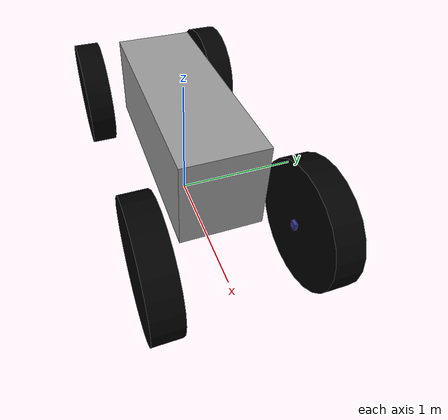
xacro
<?xml version="1.0"?>

<robot name="vehicle" xmlns:xacro="http://www.ros.org/wiki/xacro">

  <xacro:arg name="laser_enabled" default="false" />
  <xacro:arg name="camera_enabled" default="false" />
  <xacro:arg name="navsat_enabled" default="false" />
  <xacro:arg name="velodyne_enabled" default="false" />

  <xacro:include filename="$(find four_wheel_steering_description)/urdf/chassis.xacro" />
  <xacro:include filename="$(find four_wheel_steering_description)/urdf/sensors.xacro" />

  <!-- Base Properties -->
  <xacro:property name="base_x_size" value="1.66000" />
  <xacro:property name="base_y_size" value="0.60000" />
  <xacro:property name="base_z_size" value="0.66000" />

  <xacro:property name="wheelbase" value="2" />
  <xacro:property name="track" value="1.1" />
  <xacro:property name="mass_base" value="500" />

  <!-- Wheel Properties -->
  <xacro:property name="steering_link_mass" value="30" />
  <xacro:property name="mass_wheel" value="5" />
  <xacro:property name="wheel_length" value="0.2" />
  <xacro:property name="wheel_radius" value="0.45" />

  <!-- Wheel Mounting Positions -->
  <xacro:property name="ground_clearance" value="0.35" />
  <xacro:property name="wheel_x_offset" value="0.0" />
  <xacro:property name="wheel_y_offset" value="0.1" />

  <!-- LIDAR Properties -->
  <xacro:property name="lidar_ground_clearance" value="0.69" />
  <xacro:property name="lidar_x_offset" value="1.2" />

  <xacro:macro name="vehicle">

    <xacro:chassis>
      <!-- visual chassis -->
      <visual>
        <origin xyz="0 0 0" rpy="0 0 0" />
        <geometry>
          <box size="${base_x_size} ${base_y_size} ${base_z_size}"/>
        </geometry>
        <material name="grey">
          <color rgba="0.6 0.6 0.6 1"/>
        </material>
      </visual>
      <!-- visual steering -->
      <box size="0.05 ${steering_link_y} 0.05"/>
      <!-- visual wheel -->
      <cylinder length="${wheel_length}" radius="${wheel_radius}"/>
    </xacro:chassis>
    <xacro:sensors/>

  </xacro:macro>
  <xacro:vehicle />
</robot>

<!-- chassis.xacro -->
<robot xmlns:xacro="http://www.ros.org/wiki/xacro" name="chassis">

  <xacro:property name="M_PI" value="3.14159"/>
  <xacro:include filename="$(find four_wheel_steering_description)/urdf/wheel_steered.xacro" />

  <!-- Base Properties -->
  <xacro:property name="mass_base" value="500" />
  <xacro:property name="base_x_size" value="1.66000" />
  <xacro:property name="base_y_size" value="0.60000" />
  <xacro:property name="base_z_size" value="0.66000" />

  <xacro:property name="wheelbase" value="1.2" />
  <xacro:property name="track" value="1.1" />

  <!-- Wheel Mounting Positions -->
  <xacro:property name="ground_clearance" value="0.35" />
  <xacro:property name="wheel_x_offset" value="0.0" />
  <xacro:property name="wheel_y_offset" value="0.1" />

  <xacro:macro name="chassis" params="*visual_chassis *visual_steering *visual_wheel">
    <!-- Base footprint is on the ground under the robot -->
    <link name="base_footprint"/>

    <!-- Base link is the center of the robot -->
    <link name="base_link">
      <xacro:insert_block name="visual_chassis"/>
      <collision>
        <geometry>
          <box size="${base_x_size} ${base_y_size} ${base_z_size}"/>
        </geometry>
      </collision>
    </link>
    <joint name="base_footprint_joint" type="fixed">
      <origin xyz="0 0 ${ground_clearance + base_z_size/2}" rpy="0 0 0" />
      <child link="base_link" />
      <parent link="base_footprint" />
    </joint>

    <!-- Interial link stores the robot's inertial information -->
    <link name="inertial_link">
      <inertial>
        <mass value="${mass_base}" />
        <origin xyz="0 0 0" />
        <inertia ixx="${mass_base/12.0 * (base_y_size*base_y_size + base_z_size*base_z_size)}" ixy="0" ixz="0"
                 iyy="${mass_base/12.0 * (base_x_size*base_x_size + base_z_size*base_z_size)}" iyz="0"
                 izz="${mass_base/12.0 * (base_y_size*base_y_size + base_x_size*base_x_size)}" />
      </inertial>
    </link>

    <joint name="inertial_joint" type="fixed">
      <origin xyz="0 0 0" rpy="0 0 0" />
      <parent link="base_link" />
      <child link="inertial_link" />
    </joint>

    <!-- Wheel macros -->
    <xacro:wheel_steered wheel_prefix="front_left" parent_link="base_link" wheel_origin_y="${wheel_y_offset}"  left_right="-1">
      <origin xyz="${wheelbase/2+wheel_x_offset} ${track/2-wheel_y_offset} ${-base_z_size/2 + wheel_radius - ground_clearance}" rpy="0 0 0" />
      <xacro:insert_block name="visual_steering"/>
      <xacro:insert_block name="visual_wheel"/>
    </xacro:wheel_steered>
    <xacro:wheel_steered wheel_prefix="front_right" parent_link="base_link" wheel_origin_y="${-wheel_y_offset}"  left_right="1">
      <origin xyz="${wheelbase/2+wheel_x_offset} ${-track/2+wheel_y_offset} ${-base_z_size/2 + wheel_radius - ground_clearance}" rpy="0 0 0" />
      <xacro:insert_block name="visual_steering"/>
      <xacro:insert_block name="visual_wheel"/>
    </xacro:wheel_steered>
    <xacro:wheel_steered wheel_prefix="rear_left" parent_link="base_link" wheel_origin_y="${wheel_y_offset}"  left_right="-1">
      <origin xyz="${-wheelbase/2+wheel_x_offset} ${track/2-wheel_y_offset} ${-base_z_size/2 + wheel_radius - ground_clearance}" rpy="0 0 0" />
      <xacro:insert_block name="visual_steering"/>
      <xacro:insert_block name="visual_wheel"/>
    </xacro:wheel_steered>
    <xacro:wheel_steered wheel_prefix="rear_right" parent_link="base_link" wheel_origin_y="${-wheel_y_offset}"  left_right="1">
      <origin xyz="${-wheelbase/2+wheel_x_offset} ${-track/2+wheel_y_offset} ${-base_z_size/2 + wheel_radius - ground_clearance}" rpy="0 0 0" />
      <xacro:insert_block name="visual_steering"/>
      <xacro:insert_block name="visual_wheel"/>
    </xacro:wheel_steered>

    <!-- Gazebo plugin for ROS Control -->
    <gazebo>
      <plugin name="gazebo_ros_control" filename="libgazebo_ros_control.so"/>
    </gazebo>

  </xacro:macro>
</robot>

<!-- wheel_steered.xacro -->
<robot xmlns:xacro="http://www.ros.org/wiki/xacro" name="wheel_steered">

  <xacro:property name="steering_link_y" value="0.05" />
  <xacro:property name="steering_link_xz" value="0.1" />
  <xacro:property name="steering_link_mass" value="30" />

  <xacro:include filename="$(find four_wheel_steering_description)/urdf/wheel.xacro" />

  <xacro:macro name="wheel_steered" params="wheel_prefix parent_link wheel_origin_y left_right *joint_origin *visual_steering *visual_wheel">
    <link name="${wheel_prefix}_steering">
      <visual>
        <origin xyz="0 0 0" rpy="0 0 ${left_right * M_PI/2 - M_PI/2}"/>
        <geometry>
          <xacro:insert_block name="visual_steering"/>
        </geometry>
        <material name="blue">
          <color rgba="0.2 0.2 0.6 1"/>
        </material>
      </visual>
      <inertial>
        <mass value="${steering_link_mass}" />
        <origin xyz="0 0 0" />
        <inertia  ixx="${steering_link_mass/12.0 * (steering_link_y*steering_link_y + steering_link_xz*steering_link_xz)}" ixy="0" ixz="0"
                  iyy="${steering_link_mass/12.0 * (steering_link_xz*steering_link_xz + steering_link_xz*steering_link_xz)}" iyz="0"
                  izz="${steering_link_mass/12.0 * (steering_link_y*steering_link_y + steering_link_xz*steering_link_xz)}" />
      </inertial>
    </link>

    <joint name="${wheel_prefix}_steering_joint" type="revolute">
      <limit lower="${-M_PI/2}" upper="${M_PI/2}" effort="10000000" velocity="1000000"/>
      <axis xyz="0 0 1"/>
      <parent link="${parent_link}"/>
      <child link="${wheel_prefix}_steering"/>
      <xacro:insert_block name="joint_origin"/>
    </joint>

    <transmission name="${wheel_prefix}_steering_trans" type="SimpleTransmission">
      <type>transmission_interface/SimpleTransmission</type>
      <actuator name="${wheel_prefix}_steering_motor">
        <mechanicalReduction>1</mechanicalReduction>
      </actuator>
      <joint name="${wheel_prefix}_steering_joint">
        <!-- deprecated in kinetic but only way to make it works on indigo -->
        <hardwareInterface>PositionJointInterface</hardwareInterface>
      </joint>
    </transmission>

    <xacro:wheel wheel_prefix="${wheel_prefix}" parent_link="${wheel_prefix}_steering" left_right="${left_right}">
      <origin xyz="0 ${wheel_origin_y} 0" rpy="${-M_PI/2} 0 0" />
      <xacro:insert_block name="visual_wheel"/>
    </xacro:wheel>
  </xacro:macro>

</robot>

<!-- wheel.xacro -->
<robot xmlns:xacro="http://www.ros.org/wiki/xacro" name="wheel">

  <!-- Wheel Properties -->
  <xacro:property name="wheel_length" value="0.2" />
  <xacro:property name="wheel_radius" value="0.45" />
  <xacro:property name="mass_wheel" value="5" />

  <xacro:macro name="wheel" params="wheel_prefix parent_link left_right *joint_origin *visual_wheel">
    <gazebo reference="${wheel_prefix}_wheel_link">
      <material>Gazebo/Black</material>
    </gazebo>
    <link name="${wheel_prefix}_wheel_link">
      <inertial>
        <mass value="${mass_wheel}" />
        <origin xyz="0 0 0" rpy="0 0 0" />
        <inertia  ixx="${mass_wheel/4.0*(wheel_radius*wheel_radius+wheel_length*wheel_length/3.0)}" ixy="0" ixz="0"
                  iyy="${mass_wheel/4.0*(wheel_radius*wheel_radius+wheel_length*wheel_length/3.0)}" iyz="0"
                  izz="${mass_wheel*wheel_radius*wheel_radius/2.0}" />
      </inertial>
      <visual>
        <origin xyz="0 0 0" rpy="0 0 0" />
        <geometry>
          <xacro:insert_block name="visual_wheel"/>
        </geometry>
        <material name="black">
          <color rgba="0 0 0 1"/>
        </material>
      </visual>
      <collision>
        <origin xyz="0 0 0" rpy="0 0 0" />
        <geometry>
          <cylinder length="${wheel_length}" radius="${wheel_radius}" />
        </geometry>
      </collision>
    </link>

    <gazebo reference="${wheel_prefix}_wheel_link">
      <mu1 value="0.9"/>
      <mu2 value="0.9"/>
      <kp value="1e8" />
      <minDepth>0.005</minDepth>
    </gazebo>

    <joint name="${wheel_prefix}_wheel" type="continuous">
      <parent link="${parent_link}"/>
      <child link="${wheel_prefix}_wheel_link"/>
      <xacro:insert_block name="joint_origin"/>
      <axis xyz="0 0 1" rpy="0 0 0" />
    </joint>

    <transmission name="${wheel_prefix}_wheel_trans" type="SimpleTransmission">
      <type>transmission_interface/SimpleTransmission</type>
      <actuator name="${wheel_prefix}_wheel_motor">
        <mechanicalReduction>1</mechanicalReduction>
      </actuator>
      <joint name="${wheel_prefix}_wheel">
        <!-- deprecated in kinetic but only way to make it works on indigo -->
        <hardwareInterface>VelocityJointInterface</hardwareInterface>
      </joint>
    </transmission>

  </xacro:macro>
</robot>

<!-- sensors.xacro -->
<robot name="sensors" xmlns:xacro="http://www.ros.org/wiki/xacro">

  <xacro:arg name="laser_enabled" default="false" />
  <xacro:arg name="camera_enabled" default="false" />
  <xacro:arg name="navsat_enabled" default="false" />
  <xacro:arg name="velodyne_enabled" default="false" />

  <!-- LIDAR Properties -->
  <xacro:property name="lidar_ground_clearance" value="0.69" />
  <xacro:property name="lidar_x_offset" value="1.2" />

  <xacro:macro name="sensors">

    <xacro:if value="$(arg laser_enabled)">
      <xacro:include filename="$(find lms1xx)/urdf/sick_lms1xx.urdf.xacro"/>
      <xacro:sick_lms1xx />
      <joint name="laser_joint" type="fixed">
        <origin xyz="${lidar_x_offset} 0.0 ${lidar_ground_clearance - base_z_size/2 - ground_clearance}" rpy="0 0 0" />
        <parent link="base_link" />
        <child link="laser" />
      </joint>
    </xacro:if>

    <xacro:if value="$(arg camera_enabled)">
      <link name="camera_link"/>
      <joint name="camera_joint" type="fixed">
        <origin xyz="0.35 0 0.41" rpy="0 0 0" />
        <parent link="base_link" />
        <child link="camera_link" />
      </joint>
    </xacro:if>

    <xacro:if value="$(arg navsat_enabled)">
      <link name="navsat_link">
        <inertial>
          <inertia ixx="0.00001" ixy="0.0" ixz="0.0" iyy="0.00001" iyz="0.0" izz="0.00001" />
          <mass value="0.015" />  <!-- [kg] -->
          <origin xyz="0 0 0" rpy="0 0 0" />
        </inertial>
      </link>
      <joint name="navsat_joint" type="revolute">
        <origin xyz="${-wheelbase/2} 0 0.3" rpy="0 0 0" />
        <parent link="base_link" />
        <child link="navsat_link" />
        <limit upper="0" lower="0" effort="0" velocity="0" />
      </joint>
      <gazebo>
        <plugin name="gps_controller" filename="libhector_gazebo_ros_gps.so">
          <updateRate>10</updateRate>
          <bodyName>navsat_link</bodyName>
          <frameId>navsat_link</frameId>
          <topicName>navsat/fix</topicName>
          <velocityTopicName>navsat/vel_simul</velocityTopicName>
          <referenceLatitude>45.76327</referenceLatitude>
          <referenceLongitude>3.1094</referenceLongitude>
          <referenceHeading>90.0</referenceHeading>
          <referenceAltitude>400</referenceAltitude>
          <drift>0.05 0.05 0.05</drift>
          <gaussianNoise>0.01 0.01 0.01</gaussianNoise>
          <velocityDrift>0 0 0</velocityDrift>
          <velocityGaussianNoise>0.01 0.01 0.01</velocityGaussianNoise>
          <status>2</status> <!-- Gps rtk : NavSatStatus::STATUS_GBAS_FIX -->
        </plugin>
      </gazebo>
    </xacro:if>

    <xacro:if value="$(arg velodyne_enabled)">
      <link name="velodyne"/>
      <joint name="velodyne_joint" type="fixed">
        <origin xyz="0.0 0.0 1.0" rpy="0 0 0" />
        <parent link="base_link" />
        <child link="velodyne" />
      </joint>
      <gazebo reference="velodyne">
        <sensor type="ray" name="velodyne_sensor">
          <pose>0.0 0.0 0.0 0.0 0 0</pose>
          <visualize>false</visualize>
          <update_rate>10</update_rate>
          <ray>
            <scan>
              <horizontal>
                <samples>720</samples>
                <min_angle>-3.13</min_angle>
                <max_angle>3.14</max_angle>
              </horizontal>
              <vertical>
                <samples>32</samples>
                <min_angle>-0.13</min_angle>
                <max_angle>0.13</max_angle>
              </vertical>
            </scan>
            <range>
              <min>0.30</min>
              <max>30.0</max>
            </range>
          </ray>
          <plugin name="velodyne_controller" filename="libgazebo_ros_block_laser.so">
            <topicName>scan_velodyne</topicName>
            <updateRate>10</updateRate>
            <frameName>/velodyne</frameName>
            <alwaysOn>true</alwaysOn>
          </plugin>
        </sensor>
      </gazebo>
    </xacro:if>

    <!-- IMU Link is the standard mounting position for the IMU.-->
    <link name="imu_link"/>
    <joint name="imu_joint" type="fixed">
      <origin xyz="0.35 0 0.1" rpy="0 0 0" />
      <parent link="base_link" />
      <child link="imu_link" />
    </joint>
    <gazebo>
      <plugin name="imu_controller" filename="libhector_gazebo_ros_imu.so">
        <updateRate>100.0</updateRate>
        <bodyName>base_link</bodyName>
        <topicName>imu/data</topicName>
        <accelDrift>0.005 0.005 0.005</accelDrift>
        <accelGaussianNoise>0.005 0.005 0.005</accelGaussianNoise>
        <rateDrift>0.005 0.005 0.005 </rateDrift>
        <rateGaussianNoise>0.005 0.005 0.005 </rateGaussianNoise>
        <headingDrift>0.005</headingDrift>
        <headingGaussianNoise>0.005</headingGaussianNoise>
      </plugin>
    </gazebo>
  </xacro:macro>
</robot>
